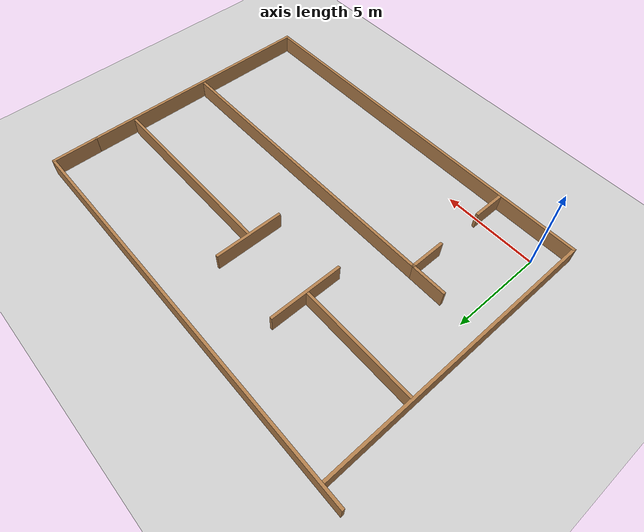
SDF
<sdf version="1.7">
 <world name="default">
  <light name="sun" type="directional">
   <pose>0 0 10 0 -0 0</pose>
   <diffuse>0.8 0.8 0.8 1</diffuse>
   <specular>0.2 0.2 0.2 1</specular>
   <attenuation>
    <range>1000</range>
    <constant>0.9</constant>
    <linear>0.01</linear>
    <quadratic>0.001</quadratic>
   </attenuation>
   <direction>-0.5 0.1 -0.9</direction>
   <spot><inner_angle>0</inner_angle><outer_angle>0</outer_angle><falloff>0</falloff></spot>
  </light>
  <model name="ground_plane">
   <static>1</static>
   <link name="link">
    <collision name="collision">
     <geometry><plane><normal>0 0 1</normal><size>100 100</size></plane></geometry>
     <surface>
      <contact><collide_bitmask>65535</collide_bitmask></contact>
      <friction><ode><mu>100</mu><mu2>50</mu2></ode></friction>
     </surface>
    </collision>
    <visual name="visual">
     <cast_shadows>0</cast_shadows>
     <geometry><plane><normal>0 0 1</normal><size>100 100</size></plane></geometry>
     <material>
      <script><uri>file://media/materials/scripts/gazebo.material</uri><name>Gazebo/Grey</name></script>
     </material>
    </visual>
   </link>
  </model>
  <gravity>0 0 -9.8</gravity>
  <magnetic_field>6e-06 2.3e-05 -4.2e-05</magnetic_field>
  <atmosphere type="adiabatic"/>
  <physics type="ode">
   <max_step_size>0.001</max_step_size>
   <real_time_factor>1</real_time_factor>
   <real_time_update_rate>1000</real_time_update_rate>
  </physics>
  <scene><ambient>0.4 0.4 0.4 1</ambient><background>0.7 0.7 0.7 1</background><shadows>1</shadows></scene>
  <spherical_coordinates>
   <surface_model>EARTH_WGS84</surface_model>
   <latitude_deg>0</latitude_deg>
   <longitude_deg>0</longitude_deg>
   <elevation>0</elevation>
   <heading_deg>0</heading_deg>
  </spherical_coordinates>
  <model name="Untitled1">
   <pose>8.62963 6.44794 0 0 -0 0</pose>
   <link name="Wall_11">
    <collision name="Wall_11_Collision">
     <geometry><box><size>20.6383 0.15 1</size></box></geometry>
     <pose>0 0 0.5 0 -0 0</pose>
    </collision>
    <visual name="Wall_11_Visual">
     <pose>0 0 0.5 0 -0 0</pose>
     <geometry><box><size>20.6383 0.15 1</size></box></geometry>
     <material>
      <script><uri>file://media/materials/scripts/gazebo.material</uri><name>Gazebo/Wood</name></script>
      <ambient>1 1 1 1</ambient>
     </material>
     <meta><layer>0</layer></meta>
    </visual>
    <pose>0.530371 -7.79394 0 0 -0 0.001269</pose>
   </link>
   <link name="Wall_14">
    <collision name="Wall_14_Collision">
     <geometry><box><size>13.2122 0.15 1</size></box></geometry>
     <pose>0 0 0.5 0 -0 0</pose>
    </collision>
    <visual name="Wall_14_Visual">
     <pose>0 0 0.5 0 -0 0</pose>
     <geometry><box><size>13.2122 0.15 1</size></box></geometry>
     <material>
      <script><uri>file://media/materials/scripts/gazebo.material</uri><name>Gazebo/Wood</name></script>
      <ambient>1 1 1 1</ambient>
     </material>
     <meta><layer>0</layer></meta>
    </visual>
    <pose>10.8104 -1.24994 0 0 -0 1.56528</pose>
   </link>
   <link name="Wall_16">
    <collision name="Wall_16_Collision">
     <geometry><box><size>2.59465 0.15 1</size></box></geometry>
     <pose>0 0 0.5 0 -0 0</pose>
    </collision>
    <visual name="Wall_16_Visual">
     <pose>0 0 0.5 0 -0 0</pose>
     <geometry><box><size>2.59465 0.15 1</size></box></geometry>
     <material>
      <script><uri>file://media/materials/scripts/gazebo.material</uri><name>Gazebo/Wood</name></script>
      <ambient>1 1 1 1</ambient>
     </material>
     <meta><layer>0</layer></meta>
    </visual>
    <pose>10.8464 6.50356 0 0 -0 1.5708</pose>
   </link>
   <link name="Wall_18">
    <collision name="Wall_18_Collision">
     <geometry><box><size>21.8429 0.15 1</size></box></geometry>
     <pose>0 0 0.5 0 -0 0</pose>
    </collision>
    <visual name="Wall_18_Visual">
     <pose>0 0 0.5 0 -0 0</pose>
     <geometry><box><size>21.8429 0.15 1</size></box></geometry>
     <material>
      <script><uri>file://media/materials/scripts/gazebo.material</uri><name>Gazebo/Wood</name></script>
      <ambient>1 1 1 1</ambient>
     </material>
     <meta><layer>0</layer></meta>
    </visual>
    <pose>-0.000129 7.76656 0 0 -0 3.13786</pose>
   </link>
   <link name="Wall_30">
    <collision name="Wall_30_Collision">
     <geometry><box><size>1.75 0.15 1</size></box></geometry>
     <pose>0 0 0.5 0 -0 0</pose>
    </collision>
    <visual name="Wall_30_Visual">
     <pose>0 0 0.5 0 -0 0</pose>
     <geometry><box><size>1.75 0.15 1</size></box></geometry>
     <material>
      <script><uri>file://media/materials/scripts/gazebo.material</uri><name>Gazebo/Wood</name></script>
      <ambient>1 1 1 1</ambient>
     </material>
     <meta><layer>0</layer></meta>
    </visual>
    <pose>-5.49363 -6.87494 0 0 -0 1.5708</pose>
   </link>
   <link name="Wall_35">
    <collision name="Wall_35_Collision">
     <geometry><box><size>16.25 0.15 1</size></box></geometry>
     <pose>0 0 0.5 0 -0 0</pose>
    </collision>
    <visual name="Wall_35_Visual">
     <pose>0 0 0.5 0 -0 0</pose>
     <geometry><box><size>16.25 0.15 1</size></box></geometry>
     <material>
      <script><uri>file://media/materials/scripts/gazebo.material</uri><name>Gazebo/Wood</name></script>
      <ambient>1 1 1 1</ambient>
     </material>
     <meta><layer>0</layer></meta>
    </visual>
    <pose>2.55137 -1.55794 0 0 -0 3.14159</pose>
   </link>
   <link name="Wall_54">
    <collision name="Wall_54_Collision">
     <geometry><box><size>2 0.15 1</size></box></geometry>
     <pose>0 0 0.5 0 -0 0</pose>
    </collision>
    <visual name="Wall_54_Visual">
     <pose>0 0 0.5 0 -0 0</pose>
     <geometry><box><size>2 0.15 1</size></box></geometry>
     <material>
      <script><uri>file://media/materials/scripts/gazebo.material</uri><name>Gazebo/Wood</name></script>
      <ambient>1 1 1 1</ambient>
     </material>
     <meta><layer>0</layer></meta>
    </visual>
    <pose>-5.49863 -2.48294 0 0 -0 -1.5708</pose>
   </link>
   <link name="Wall_56">
    <collision name="Wall_56_Collision">
     <geometry><box><size>1.96762 0.15 1</size></box></geometry>
     <pose>0 0 0.5 0 -0 0</pose>
    </collision>
    <visual name="Wall_56_Visual">
     <pose>0 0 0.5 0 -0 0</pose>
     <geometry><box><size>1.96762 0.15 1</size></box></geometry>
     <material>
      <script><uri>file://media/materials/scripts/gazebo.material</uri><name>Gazebo/Wood</name></script>
      <ambient>1 1 1 1</ambient>
     </material>
     <meta><layer>0</layer></meta>
    </visual>
    <pose>-6.40763 -1.55594 0 0 -0 -0.0022</pose>
   </link>
   <link name="Wall_58">
    <collision name="Wall_58_Collision">
     <geometry><box><size>10 0.15 1</size></box></geometry>
     <pose>0 0 0.5 0 -0 0</pose>
    </collision>
    <visual name="Wall_58_Visual">
     <pose>0 0 0.5 0 -0 0</pose>
     <geometry><box><size>10 0.15 1</size></box></geometry>
     <material>
      <script><uri>file://media/materials/scripts/gazebo.material</uri><name>Gazebo/Wood</name></script>
      <ambient>1 1 1 1</ambient>
     </material>
     <meta><layer>0</layer></meta>
    </visual>
    <pose>5.67437 2.97006 0 0 -0 3.14159</pose>
   </link>
   <link name="Wall_6">
    <collision name="Wall_6_Collision">
     <geometry><box><size>15.6905 0.15 1</size></box></geometry>
     <pose>0 0 0.5 0 -0 0</pose>
    </collision>
    <visual name="Wall_6_Visual">
     <pose>0 0 0.5 0 -0 0</pose>
     <geometry><box><size>15.6905 0.15 1</size></box></geometry>
     <material>
      <script><uri>file://media/materials/scripts/gazebo.material</uri><name>Gazebo/Wood</name></script>
      <ambient>1 1 1 1</ambient>
     </material>
     <meta><layer>0</layer></meta>
    </visual>
    <pose>-9.73163 -0.036936 0 0 -0 1.57311</pose>
   </link>
   <link name="Wall_62">
    <collision name="Wall_62_Collision">
     <geometry><box><size>6.25 0.15 1</size></box></geometry>
     <pose>0 0 0.5 0 -0 0</pose>
    </collision>
    <visual name="Wall_62_Visual">
     <pose>0 0 0.5 0 -0 0</pose>
     <geometry><box><size>6.25 0.15 1</size></box></geometry>
     <material>
      <script><uri>file://media/materials/scripts/gazebo.material</uri><name>Gazebo/Wood</name></script>
      <ambient>1 1 1 1</ambient>
     </material>
     <meta><layer>0</layer></meta>
    </visual>
    <pose>-6.56063 2.96606 0 0 -0 0</pose>
   </link>
   <link name="Wall_66">
    <collision name="Wall_66_Collision">
     <geometry><box><size>4 0.15 1</size></box></geometry>
     <pose>0 0 0.5 0 -0 0</pose>
    </collision>
    <visual name="Wall_66_Visual">
     <pose>0 0 0.5 0 -0 0</pose>
     <geometry><box><size>4 0.15 1</size></box></geometry>
     <material>
      <script><uri>file://media/materials/scripts/gazebo.material</uri><name>Gazebo/Wood</name></script>
      <ambient>1 1 1 1</ambient>
     </material>
     <meta><layer>0</layer></meta>
    </visual>
    <pose>-3.35063 2.99006 0 0 -0 -1.5708</pose>
   </link>
   <link name="Wall_68">
    <collision name="Wall_68_Collision">
     <geometry><box><size>3.75 0.15 1</size></box></geometry>
     <pose>0 0 0.5 0 -0 0</pose>
    </collision>
    <visual name="Wall_68_Visual">
     <pose>0 0 0.5 0 -0 0</pose>
     <geometry><box><size>3.75 0.15 1</size></box></geometry>
     <material>
      <script><uri>file://media/materials/scripts/gazebo.material</uri><name>Gazebo/Wood</name></script>
      <ambient>1 1 1 1</ambient>
     </material>
     <meta><layer>0</layer></meta>
    </visual>
    <pose>0.710371 2.99206 0 0 -0 -1.5708</pose>
   </link>
   <static>1</static>
  </model>
 </world>
</sdf>
